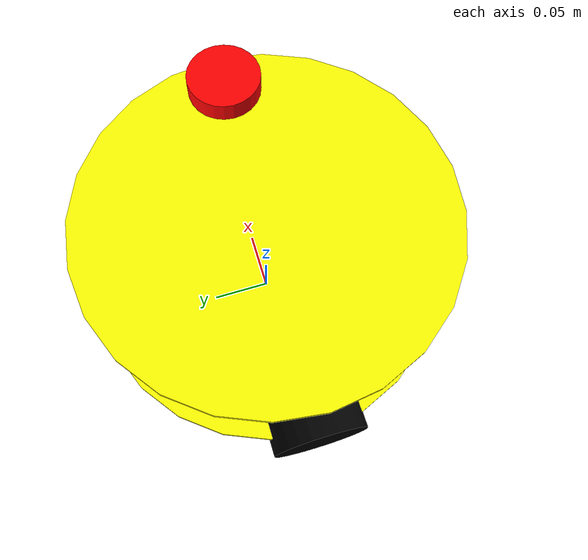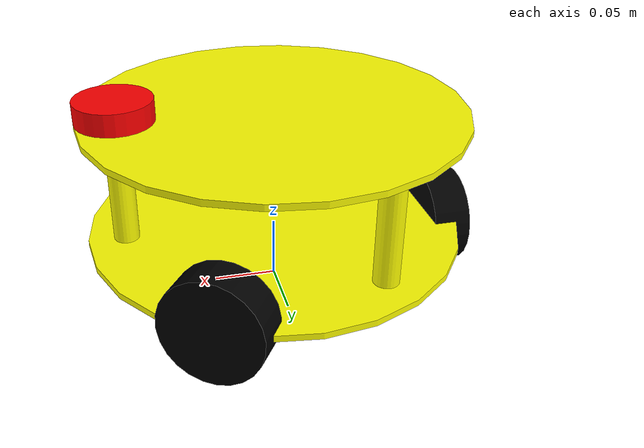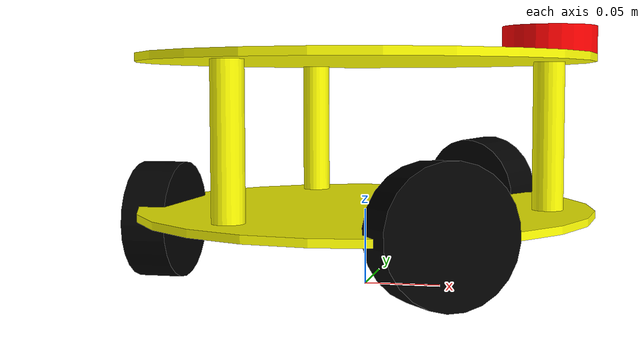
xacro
<?xml version="1.0"?>
<robot name="omni_3wheels_robot" xmlns:xacro="http://ros.org/wiki/xacro">

    <!-- Define the colors used in this robot -->
    <material name="Yellow">
        <color rgba="1 1 0 1"/>
    </material>

    <material name="Black">
        <color rgba="0 0 0 1"/>
    </material>

    <material name="Red">
        <color rgba="1 0 0 1"/>
    </material>

    <material name="White">
        <color rgba="1 1 1 1"/>
    </material>

    <material name="Blue">
        <color rgba="0 0 1 1"/>
    </material>

    <!-- Property list -->

    <!--All units in m-kg-s-radians unit system -->
    <xacro:property name="M_PI" value="3.1415926535897931" />
    <xacro:property name="M_PI_2" value="1.570796327" />
    <xacro:property name="DEG_TO_RAD" value="0.017453293" />

    <!-- Main body Cylinder base 1st floor -->
    <xacro:property name="base_f1_height" value="0.005"/> <!-- base first floor height -->
    <xacro:property name="base_f1_radius" value="0.15"/> <!-- Radius is 15 cm -->
    <xacro:property name="base_f1_mass" value="0.5"/> <!-- in kg -->

    <!-- Main body Cylinder base 2nd floor -->
    <xacro:property name="base_f2_height" value="0.005"/> <!-- base second floor height -->
    <xacro:property name="base_f2_radius" value="0.15"/> <!-- Radius is 15 cm -->
    <xacro:property name="base_f2_mass" value="0.5"/> <!-- in kg -->

    <!-- Main body Cylinder base 3rd floor -->
    <xacro:property name="base_f3_height" value="0.005"/> <!-- base third floor height -->
    <xacro:property name="base_f3_radius" value="0.15"/> <!-- Radius is 15 cm -->
    <xacro:property name="base_f3_mass" value="0.5"/> <!-- in kg -->

    <!-- Pillar body Cylinder -->
    <xacro:property name="pillar_height" value="0.1"/>
    <xacro:property name="pillar_radius" value="0.01"/>

    <!-- Wheels -->
    <xacro:property name="wheel_radius" value="0.04"/>
    <xacro:property name="wheel_height" value="0.03"/>
    <xacro:property name="wheel_mass" value="1.0"/>

    <xacro:property name="base_x_origin_to_wheel_origin" value="0.25"/>
    <xacro:property name="base_y_origin_to_wheel_origin" value="0.3"/>
    <xacro:property name="base_z_origin_to_wheel_origin" value="0.0"/>

    <!-- LiDAR -->
    <xacro:property name="lidar_height" value="0.02"/>
    <xacro:property name="lidar_radius" value="0.03"/>
    <xacro:property name="lidar_mass" value="0.2"/>

    <!-- Macro for calculating inertia of cylinder -->
    <xacro:macro name="cylinder_inertia" params="m r h">
        <inertia ixx="${m*(3*r*r+h*h)/12}" ixy = "0" ixz = "0"
                 iyy="${m*(3*r*r+h*h)/12}" iyz = "0"
                 izz="${m*r*r/2}" />
    </xacro:macro>

    <link name="base_footprint">
        <inertial>
          <mass value="0.0001" />
          <origin xyz="0 0 0" />
          <inertia ixx="0.0001" ixy="0.0" ixz="0.0"
              iyy="0.0001" iyz="0.0"
              izz="0.0001" />
        </inertial>
        <visual>
            <origin xyz="0 0 0" rpy="0 0 0" />
            <geometry>
                <box size="0.001 0.001 0.001" />
            </geometry>
        </visual>
        <collision>
            <origin xyz="0 0 0" rpy="0 0 0" />
            <geometry>
                <box size="0.001 0.001 0.001" />
            </geometry>
        </collision>
    </link>

    <joint name="base_joint" type="fixed">
        <origin xyz="0 0 ${wheel_radius - base_z_origin_to_wheel_origin}" rpy="0 0 0" />
        <parent link="base_footprint"/>
        <child link="base_f1_link" />
    </joint>

    <link name="base_f1_link">
        <inertial>
            <mass value="${base_f1_mass}"/>
            <origin xyz="0 0 0"/>
            <inertia ixx="0.0001" ixy="0" ixz="0"
                     iyy="0.0001" iyz="0"
                     izz="0.0001"/>
            <cylinder_inertia m="${base_f1_mass}" r="${base_f1_radius}" h="${base_f1_height}"/>
        </inertial>
        <visual>
            <origin xyz="0 0 ${wheel_height/3}" rpy="0 0 0"/>
            <geometry>
                <cylinder length="${base_f1_height}" radius="${base_f1_radius}"/>
            </geometry>
            <material name="Yellow"/>
        </visual>
    </link>

    <joint name="base_pillar1_f1_joint" type="fixed">
        <origin xyz="0 0 ${wheel_height}" rpy="0 0 0"/>
        <parent link="base_f1_link"/>
        <child link="pillar1_f1_link"/>
    </joint>

    <link name="pillar1_f1_link">
        <visual>
            <origin xyz="${base_f1_radius*0.8} 0 ${wheel_height}" rpy="0 0 0"/>
            <geometry>
                <cylinder length="${pillar_height}" radius="${pillar_radius}"/>
            </geometry>
            <material name="Yellow"/>
        </visual>
    </link>

    <joint name="base_pillar2_f1_joint" type="fixed">
        <origin xyz="0 0 ${wheel_height}" rpy="0 0 0"/>
        <parent link="base_f1_link"/>
        <child link="pillar2_f1_link"/>
    </joint>

    <link name="pillar2_f1_link">
        <visual>
            <origin xyz="${-base_f1_radius*0.4} ${base_f1_radius*0.688} ${wheel_height}" rpy="0 0 0"/>
            <geometry>
                <cylinder length="${pillar_height}" radius="${pillar_radius}"/>
            </geometry>
            <material name="Yellow"/>
        </visual>
    </link>

    <joint name="base_pillar3_f1_joint" type="fixed">
        <origin xyz="0 0 ${wheel_height}" rpy="0 0 0"/>
        <parent link="base_f1_link"/>
        <child link="pillar3_f1_link"/>
    </joint>

    <link name="pillar3_f1_link">
        <visual>
            <origin xyz="${-base_f1_radius*0.4} ${-base_f1_radius*0.688} ${wheel_height}" rpy="0 0 0"/>
            <geometry>
                <cylinder length="${pillar_height}" radius="${pillar_radius}"/>
            </geometry>
            <material name="Yellow"/>
        </visual>

    </link>

    <joint name="base_f2_joint"  type="fixed">
        <origin xyz="0 0 0" rpy="0 0 0"/>
        <parent link="pillar1_f1_link"/>
        <parent link="pillar2_f1_link"/>
        <parent link="pillar3_f1_link"/>
        <child link="base_f2_link"/>
    </joint>

    <link name="base_f2_link">
        <inertial>
            <mass value="${base_f2_mass}"/>
            <origin xyz="0 0 0"/>
            <inertia ixx="0.0001" ixy="0" ixz="0"
                     iyy="0.0001" iyz="0"
                     izz="0.0001"/>
            <cylinder_inertia m="${base_f2_mass}" r="${base_f2_radius}" h="${base_f2_height}"/>
        </inertial>
        <visual>
            <origin xyz="0 0 ${pillar_height - 2*wheel_height/3}" rpy="0 0 0"/>
            <geometry>
                <cylinder length="${base_f2_height}" radius="${base_f2_radius}"/>
            </geometry>
            <material name="Yellow"/>
        </visual>
    </link>

    <joint name="left_wheel_joint" type="fixed">
        <origin xyz="0 0 0"
                rpy="${-base_x_origin_to_wheel_origin}
                     ${base_y_origin_to_wheel_origin}
                     ${base_z_origin_to_wheel_origin}"/>
        <parent link="base_f1_link"/>
        <parent link="base_footprint"/>
        <child link="left_wheel"/>
        <axis xyz="1 1 0" rpy="0 0 0"/>
        <limit effort="100" velocity="100"/>
        <joint_properties damping="0.0" friction="0.0"/>
    </joint>

    <link name="left_wheel">
        <visual>
            <origin xyz="${0.4*base_f1_radius} ${-0.85*base_f1_radius} 0"
                    rpy="${M_PI_2} 0 ${M_PI_2/3}"/>
            <geometry>
                <cylinder length="${wheel_height}" radius="${wheel_radius}"/>
            </geometry>
            <material name="Black"/>
        </visual>
        <collision>
            <origin xyz="${0.4*base_f1_radius} ${-0.85*base_f1_radius} 0"
                    rpy="${M_PI_2} 0 ${M_PI_2/3}"/>
            <geometry>
                <cylinder length="${wheel_height}" radius="${wheel_radius}"/>
            </geometry>
        </collision>
        <inertial>
            <mass value="${wheel_mass}"/>
            <origin xyz="0 0 0"/>
            <inertia ixx="0.0001" ixy="0" ixz="0"
                     iyy="0.0001" iyz="0"
                     izz="0.0001"/>
        </inertial>
    </link>

    <joint name="right_wheel_joint" type="fixed">
        <origin xyz="0 0 0"
                rpy="${base_x_origin_to_wheel_origin}
                     ${base_y_origin_to_wheel_origin}
                     ${base_z_origin_to_wheel_origin}"/>
        <parent link="base_f1_link"/>
        <parent link="base_footprint"/>
        <child link="right_wheel"/>
        <axis xyz="1 1 0" rpy="0 0 0"/>
        <limit effort="100" velocity="100"/>
        <joint_properties damping="0.0" friction="0.0"/>
    </joint>

    <link name="right_wheel">
        <visual>
            <origin xyz="${0.4*base_f1_radius} ${0.85*base_f1_radius} 0"
                    rpy="${M_PI_2} 0 ${-M_PI_2/3}"/>
            <geometry>
                <cylinder length="${wheel_height}" radius="${wheel_radius}"/>
            </geometry>
            <material name="Black"/>
        </visual>
        <collision>
            <origin xyz="${0.4*base_f1_radius} ${0.85*base_f1_radius} 0"
                    rpy="${M_PI_2} 0 ${-M_PI_2/3}"/>
            <geometry>
                <cylinder length="${wheel_height}" radius="${wheel_radius}"/>
            </geometry>
        </collision>
        <inertial>
            <mass value="${wheel_mass}"/>
            <origin xyz="0 0 0"/>
            <inertia ixx="0.0001" ixy="0" ixz="0"
                     iyy="0.0001" iyz="0"
                     izz="0.0001"/>
        </inertial>
    </link>

    <joint name="back_wheel_joint" type="fixed">
        <origin xyz="0 0 0" rpy="0 0 ${base_z_origin_to_wheel_origin}"/>
        <parent link="base_f1_link"/>
        <parent link="base_footprint"/>
        <child link="back_wheel"/>
        <axis xyz="0 1 0" rpy="0 0 0"/>
        <limit effort="100" velocity="100"/>
        <joint_properties damping="0.0" friction="0.0"/>
    </joint>

    <link name="back_wheel">
        <visual>
            <origin xyz="${-0.95*base_f1_radius} 0 0"
                    rpy="0 ${M_PI_2} 0"/>
            <geometry>
                <cylinder length="${wheel_height}" radius="${wheel_radius}"/>
            </geometry>
            <material name="Black"/>
        </visual>
        <collision>
            <origin xyz="${-0.95*base_f1_radius} 0 0"
                    rpy="0 ${M_PI_2} 0"/>
            <geometry>
                <cylinder length="${wheel_height}" radius="${wheel_radius}"/>
            </geometry>
        </collision>
        <inertial>
            <mass value="${wheel_mass}"/>
            <origin xyz="0 0 0"/>
            <inertia ixx="0.0001" ixy="0" ixz="0"
                     iyy="0.0001" iyz="0"
                     izz="0.0001"/>
        </inertial>
    </link>

    <joint name="rplidar_joint" type="fixed">
        <parent link="base_f2_link"/>
        <child link="laser"/>
        <axis xyz="0 0 0"/>
        <origin xyz="0.12 0 0" rpy="0 0 0"/>
    </joint>

    <link name="laser">
        <visual>
            <origin xyz="0 0 ${pillar_height - wheel_height/3}" rpy="0 0 0"/>
            <geometry>
                <cylinder length="${lidar_height}" radius="${lidar_radius}"/>
            </geometry>
            <material name="Red"/>
        </visual>
        <collision>
            <origin xyz="0 0 ${pillar_height - wheel_height/3}" rpy="0 0 0"/>
            <geometry>
                <cylinder length="${lidar_height}" radius="${lidar_radius}"/>
            </geometry>
        </collision>
        <vision>
            <origin xyz="0 0 0" rpy="0 0 0"/>
            <geometry>
                <cylinder length="${lidar_height}" radius="${lidar_radius}"/>
            </geometry>
            <material name="Blue"/>
        </vision>
        <inertial>
            <origin xyz="0 0 0" rpy="0 0 0"/>
            <mass value="${lidar_mass}"/>
            <inertia ixx="1e-6" ixy="0" ixz="0" iyy="1e-6" iyz="0" izz="1e-6"/>
            <cylinder_inertia m="${lidar_mass}" r="${lidar_radius}" h="${lidar_height}"/>
        </inertial>
    </link>

    <link name="imu_link">

    </link>

    <joint name="imu_joint" type="fixed">
        <origin xyz="0 0 0" rpy="0 0 0"/>
        <parent link="base_f2_link"/>
        <child link="imu_link"/>
    </joint>

</robot>
